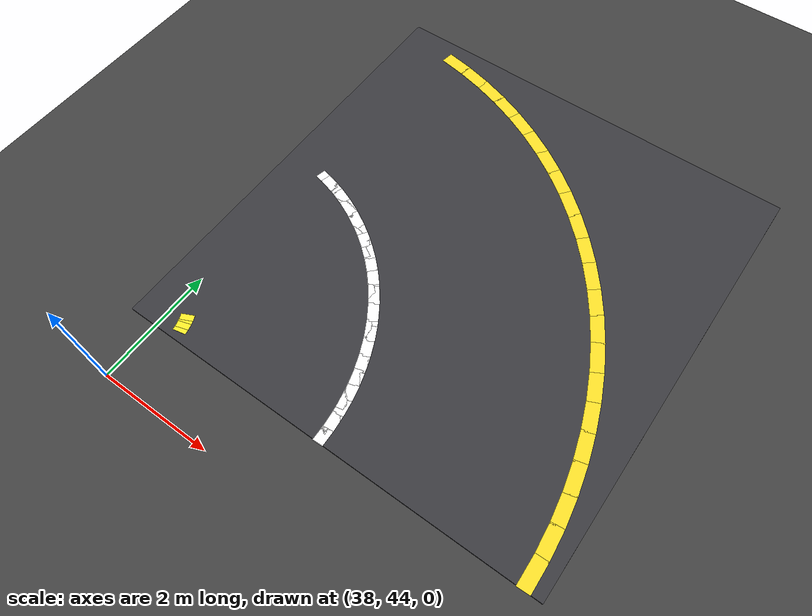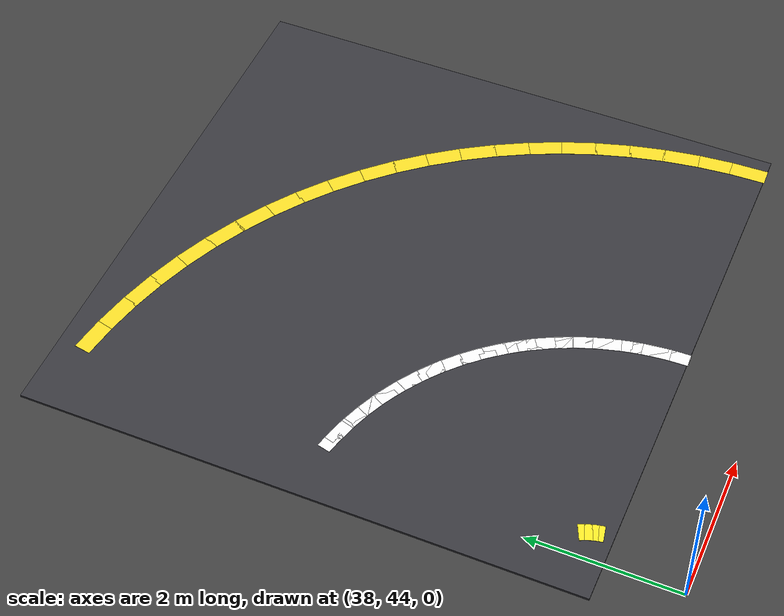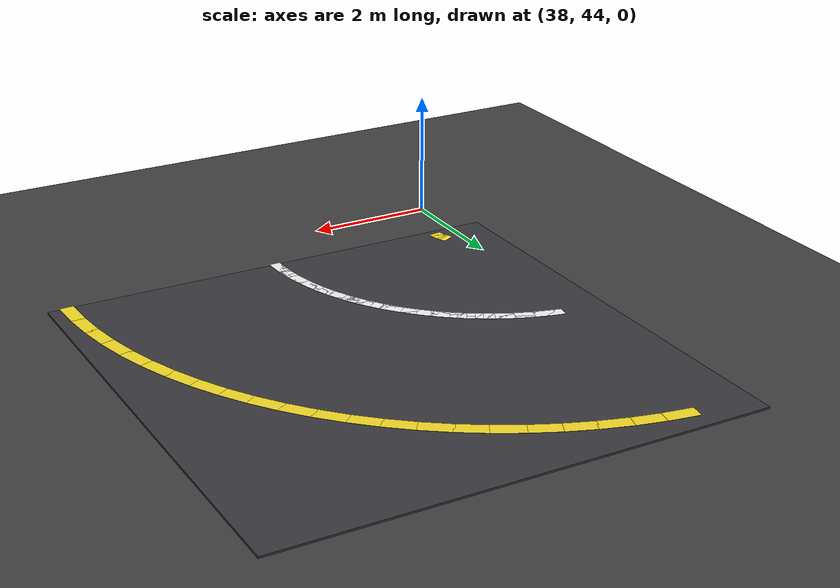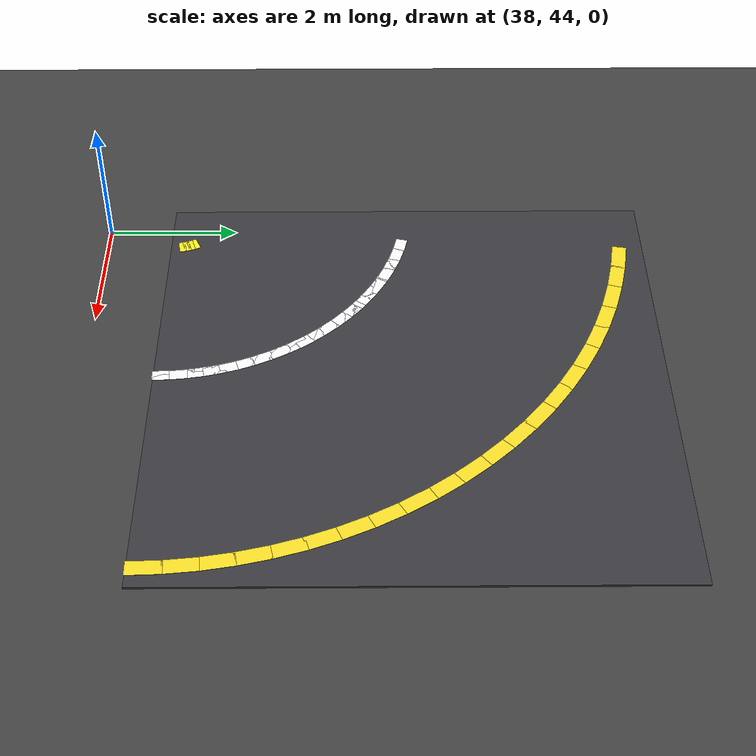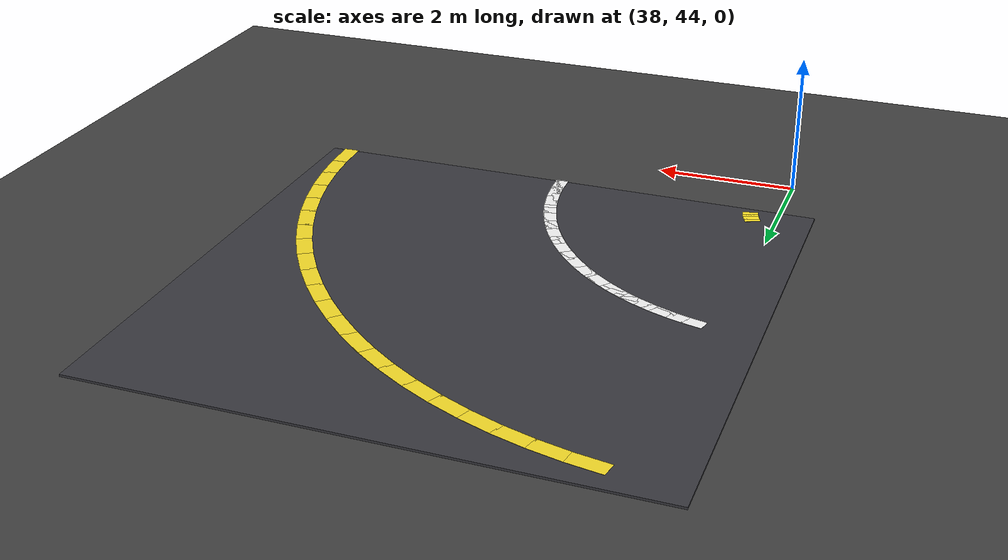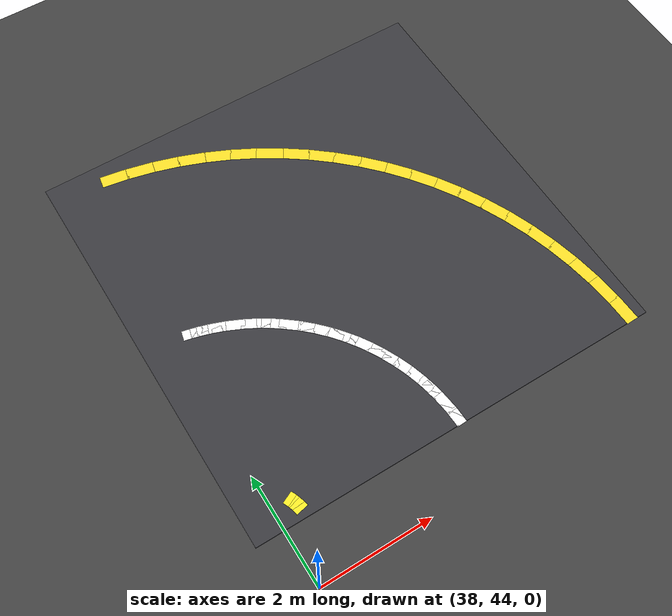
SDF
<sdf version="1.7">
 <world name="compact_city">
  <model name="ground_plane">
   <static>1</static>
   <pose>0 0 0.01 0 -0 0</pose>
   <link name="link">
    <collision name="collision">
     <geometry><plane><normal>0 0 1</normal><size>200 200</size></plane></geometry>
    </collision>
    <visual name="visual">
     <geometry><plane><normal>0 0 1</normal><size>200 200</size></plane></geometry>
     <material>
      <ambient>0.2 0.2 0.2 1</ambient>
      <diffuse>0.25 0.25 0.25 1</diffuse>
      <specular>0.1 0.1 0.1 1</specular>
     </material>
    </visual>
   </link>
  </model>
  <model name="road_tile_12">
   <static>1</static>
   <pose>41.25 48.75 0.015 0 -0 0</pose>
   <link name="link">
    <collision name="collision"><geometry><box><size>7.5 7.5 0.03</size></box></geometry></collision>
    <visual name="visual">
     <geometry><box><size>7.5 7.5 0.03</size></box></geometry>
     <material>
      <ambient>0.18 0.18 0.2 1</ambient>
      <diffuse>0.22 0.22 0.24 1</diffuse>
      <specular>0.1 0.1 0.1 1</specular>
     </material>
    </visual>
   </link>
  </model>
  <model name="ac_426">
   <static>1</static>
   <pose>41.248 45.1227 0.038 0 -0 1.6035</pose>
   <link name="link">
    <visual name="v">
     <geometry><box><size>0.260117 0.18 0.002</size></box></geometry>
     <material><ambient>1 1 1 1</ambient><diffuse>0.95 0.95 0.95 1</diffuse></material>
    </visual>
   </link>
  </model>
  <model name="ac_427">
   <static>1</static>
   <pose>41.232 45.3675 0.038 0 -0 1.669</pose>
   <link name="link">
    <visual name="v">
     <geometry><box><size>0.260117 0.18 0.002</size></box></geometry>
     <material><ambient>1 1 1 1</ambient><diffuse>0.95 0.95 0.95 1</diffuse></material>
    </visual>
   </link>
  </model>
  <model name="ac_428">
   <static>1</static>
   <pose>41.1999 45.6108 0.038 0 -0 1.7344</pose>
   <link name="link">
    <visual name="v">
     <geometry><box><size>0.260117 0.18 0.002</size></box></geometry>
     <material><ambient>1 1 1 1</ambient><diffuse>0.95 0.95 0.95 1</diffuse></material>
    </visual>
   </link>
  </model>
  <model name="ac_429">
   <static>1</static>
   <pose>41.1521 45.8516 0.038 0 -0 1.7999</pose>
   <link name="link">
    <visual name="v">
     <geometry><box><size>0.260117 0.18 0.002</size></box></geometry>
     <material><ambient>1 1 1 1</ambient><diffuse>0.95 0.95 0.95 1</diffuse></material>
    </visual>
   </link>
  </model>
  <model name="ac_430">
   <static>1</static>
   <pose>41.0886 46.0885 0.038 0 -0 1.8653</pose>
   <link name="link">
    <visual name="v">
     <geometry><box><size>0.260117 0.18 0.002</size></box></geometry>
     <material><ambient>1 1 1 1</ambient><diffuse>0.95 0.95 0.95 1</diffuse></material>
    </visual>
   </link>
  </model>
  <model name="ac_431">
   <static>1</static>
   <pose>41.0097 46.3209 0.038 0 -0 1.9308</pose>
   <link name="link">
    <visual name="v">
     <geometry><box><size>0.260117 0.18 0.002</size></box></geometry>
     <material><ambient>1 1 1 1</ambient><diffuse>0.95 0.95 0.95 1</diffuse></material>
    </visual>
   </link>
  </model>
  <model name="ac_432">
   <static>1</static>
   <pose>40.9158 46.5477 0.038 0 -0 1.9962</pose>
   <link name="link">
    <visual name="v">
     <geometry><box><size>0.260117 0.18 0.002</size></box></geometry>
     <material><ambient>1 1 1 1</ambient><diffuse>0.95 0.95 0.95 1</diffuse></material>
    </visual>
   </link>
  </model>
  <model name="ac_433">
   <static>1</static>
   <pose>40.8072 46.7677 0.038 0 -0 2.0617</pose>
   <link name="link">
    <visual name="v">
     <geometry><box><size>0.260117 0.18 0.002</size></box></geometry>
     <material><ambient>1 1 1 1</ambient><diffuse>0.95 0.95 0.95 1</diffuse></material>
    </visual>
   </link>
  </model>
  <model name="ac_434">
   <static>1</static>
   <pose>40.6845 46.9803 0.038 0 -0 2.1271</pose>
   <link name="link">
    <visual name="v">
     <geometry><box><size>0.260117 0.18 0.002</size></box></geometry>
     <material><ambient>1 1 1 1</ambient><diffuse>0.95 0.95 0.95 1</diffuse></material>
    </visual>
   </link>
  </model>
  <model name="ac_435">
   <static>1</static>
   <pose>40.5481 47.1843 0.038 0 -0 2.1926</pose>
   <link name="link">
    <visual name="v">
     <geometry><box><size>0.260117 0.18 0.002</size></box></geometry>
     <material><ambient>1 1 1 1</ambient><diffuse>0.95 0.95 0.95 1</diffuse></material>
    </visual>
   </link>
  </model>
  <model name="ac_436">
   <static>1</static>
   <pose>40.3987 47.379 0.038 0 -0 2.258</pose>
   <link name="link">
    <visual name="v">
     <geometry><box><size>0.260117 0.18 0.002</size></box></geometry>
     <material><ambient>1 1 1 1</ambient><diffuse>0.95 0.95 0.95 1</diffuse></material>
    </visual>
   </link>
  </model>
  <model name="ac_437">
   <static>1</static>
   <pose>40.2371 47.5635 0.038 0 -0 2.3235</pose>
   <link name="link">
    <visual name="v">
     <geometry><box><size>0.260117 0.18 0.002</size></box></geometry>
     <material><ambient>1 1 1 1</ambient><diffuse>0.95 0.95 0.95 1</diffuse></material>
    </visual>
   </link>
  </model>
  <model name="ac_438">
   <static>1</static>
   <pose>40.0635 47.7371 0.038 0 -0 2.3889</pose>
   <link name="link">
    <visual name="v">
     <geometry><box><size>0.260117 0.18 0.002</size></box></geometry>
     <material><ambient>1 1 1 1</ambient><diffuse>0.95 0.95 0.95 1</diffuse></material>
    </visual>
   </link>
  </model>
  <model name="ac_439">
   <static>1</static>
   <pose>39.879 47.8987 0.038 0 -0 2.4544</pose>
   <link name="link">
    <visual name="v">
     <geometry><box><size>0.260117 0.18 0.002</size></box></geometry>
     <material><ambient>1 1 1 1</ambient><diffuse>0.95 0.95 0.95 1</diffuse></material>
    </visual>
   </link>
  </model>
  <model name="ac_440">
   <static>1</static>
   <pose>39.6843 48.0481 0.038 0 -0 2.5198</pose>
   <link name="link">
    <visual name="v">
     <geometry><box><size>0.260117 0.18 0.002</size></box></geometry>
     <material><ambient>1 1 1 1</ambient><diffuse>0.95 0.95 0.95 1</diffuse></material>
    </visual>
   </link>
  </model>
  <model name="ac_441">
   <static>1</static>
   <pose>39.4803 48.1845 0.038 0 -0 2.5853</pose>
   <link name="link">
    <visual name="v">
     <geometry><box><size>0.260117 0.18 0.002</size></box></geometry>
     <material><ambient>1 1 1 1</ambient><diffuse>0.95 0.95 0.95 1</diffuse></material>
    </visual>
   </link>
  </model>
  <model name="ac_442">
   <static>1</static>
   <pose>39.2677 48.3072 0.038 0 -0 2.6507</pose>
   <link name="link">
    <visual name="v">
     <geometry><box><size>0.260117 0.18 0.002</size></box></geometry>
     <material><ambient>1 1 1 1</ambient><diffuse>0.95 0.95 0.95 1</diffuse></material>
    </visual>
   </link>
  </model>
  <model name="ac_443">
   <static>1</static>
   <pose>39.0477 48.4158 0.038 0 -0 2.7162</pose>
   <link name="link">
    <visual name="v">
     <geometry><box><size>0.260117 0.18 0.002</size></box></geometry>
     <material><ambient>1 1 1 1</ambient><diffuse>0.95 0.95 0.95 1</diffuse></material>
    </visual>
   </link>
  </model>
  <model name="ac_444">
   <static>1</static>
   <pose>38.8209 48.5097 0.038 0 -0 2.7816</pose>
   <link name="link">
    <visual name="v">
     <geometry><box><size>0.260117 0.18 0.002</size></box></geometry>
     <material><ambient>1 1 1 1</ambient><diffuse>0.95 0.95 0.95 1</diffuse></material>
    </visual>
   </link>
  </model>
  <model name="ac_445">
   <static>1</static>
   <pose>38.5885 48.5886 0.038 0 -0 2.8471</pose>
   <link name="link">
    <visual name="v">
     <geometry><box><size>0.260117 0.18 0.002</size></box></geometry>
     <material><ambient>1 1 1 1</ambient><diffuse>0.95 0.95 0.95 1</diffuse></material>
    </visual>
   </link>
  </model>
  <model name="ac_446">
   <static>1</static>
   <pose>38.3516 48.6521 0.038 0 -0 2.9125</pose>
   <link name="link">
    <visual name="v">
     <geometry><box><size>0.260117 0.18 0.002</size></box></geometry>
     <material><ambient>1 1 1 1</ambient><diffuse>0.95 0.95 0.95 1</diffuse></material>
    </visual>
   </link>
  </model>
  <model name="ao_474">
   <static>1</static>
   <pose>44.6961 45.2356 0.038 0 -0 1.6035</pose>
   <link name="link">
    <visual name="v">
     <geometry><box><size>0.494712 0.225 0.002</size></box></geometry>
     <material><ambient>0.9 0.8 0.1 1</ambient><diffuse>0.95 0.85 0.15 1</diffuse></material>
    </visual>
   </link>
  </model>
  <model name="ao_475">
   <static>1</static>
   <pose>44.6653 45.7058 0.038 0 -0 1.669</pose>
   <link name="link">
    <visual name="v">
     <geometry><box><size>0.494712 0.225 0.002</size></box></geometry>
     <material><ambient>0.9 0.8 0.1 1</ambient><diffuse>0.95 0.85 0.15 1</diffuse></material>
    </visual>
   </link>
  </model>
  <model name="ao_476">
   <static>1</static>
   <pose>44.6039 46.1728 0.038 0 -0 1.7344</pose>
   <link name="link">
    <visual name="v">
     <geometry><box><size>0.494712 0.225 0.002</size></box></geometry>
     <material><ambient>0.9 0.8 0.1 1</ambient><diffuse>0.95 0.85 0.15 1</diffuse></material>
    </visual>
   </link>
  </model>
  <model name="ao_477">
   <static>1</static>
   <pose>44.5119 46.635 0.038 0 -0 1.7999</pose>
   <link name="link">
    <visual name="v">
     <geometry><box><size>0.494712 0.225 0.002</size></box></geometry>
     <material><ambient>0.9 0.8 0.1 1</ambient><diffuse>0.95 0.85 0.15 1</diffuse></material>
    </visual>
   </link>
  </model>
  <model name="ao_478">
   <static>1</static>
   <pose>44.3899 47.0901 0.038 0 -0 1.8653</pose>
   <link name="link">
    <visual name="v">
     <geometry><box><size>0.494712 0.225 0.002</size></box></geometry>
     <material><ambient>0.9 0.8 0.1 1</ambient><diffuse>0.95 0.85 0.15 1</diffuse></material>
    </visual>
   </link>
  </model>
  <model name="ao_479">
   <static>1</static>
   <pose>44.2385 47.5362 0.038 0 -0 1.9308</pose>
   <link name="link">
    <visual name="v">
     <geometry><box><size>0.494712 0.225 0.002</size></box></geometry>
     <material><ambient>0.9 0.8 0.1 1</ambient><diffuse>0.95 0.85 0.15 1</diffuse></material>
    </visual>
   </link>
  </model>
  <model name="ao_480">
   <static>1</static>
   <pose>44.0581 47.9715 0.038 0 -0 1.9962</pose>
   <link name="link">
    <visual name="v">
     <geometry><box><size>0.494712 0.225 0.002</size></box></geometry>
     <material><ambient>0.9 0.8 0.1 1</ambient><diffuse>0.95 0.85 0.15 1</diffuse></material>
    </visual>
   </link>
  </model>
  <model name="ao_481">
   <static>1</static>
   <pose>43.8498 48.3941 0.038 0 -0 2.0617</pose>
   <link name="link">
    <visual name="v">
     <geometry><box><size>0.494712 0.225 0.002</size></box></geometry>
     <material><ambient>0.9 0.8 0.1 1</ambient><diffuse>0.95 0.85 0.15 1</diffuse></material>
    </visual>
   </link>
  </model>
  <model name="ao_482">
   <static>1</static>
   <pose>43.6143 48.8021 0.038 0 -0 2.1271</pose>
   <link name="link">
    <visual name="v">
     <geometry><box><size>0.494712 0.225 0.002</size></box></geometry>
     <material><ambient>0.9 0.8 0.1 1</ambient><diffuse>0.95 0.85 0.15 1</diffuse></material>
    </visual>
   </link>
  </model>
  <model name="ao_483">
   <static>1</static>
   <pose>43.3526 49.1938 0.038 0 -0 2.1926</pose>
   <link name="link">
    <visual name="v">
     <geometry><box><size>0.494712 0.225 0.002</size></box></geometry>
     <material><ambient>0.9 0.8 0.1 1</ambient><diffuse>0.95 0.85 0.15 1</diffuse></material>
    </visual>
   </link>
  </model>
  <model name="ao_484">
   <static>1</static>
   <pose>43.0658 49.5677 0.038 0 -0 2.258</pose>
   <link name="link">
    <visual name="v">
     <geometry><box><size>0.494712 0.225 0.002</size></box></geometry>
     <material><ambient>0.9 0.8 0.1 1</ambient><diffuse>0.95 0.85 0.15 1</diffuse></material>
    </visual>
   </link>
  </model>
  <model name="ao_485">
   <static>1</static>
   <pose>42.755 49.9218 0.038 0 -0 2.3235</pose>
   <link name="link">
    <visual name="v">
     <geometry><box><size>0.494712 0.225 0.002</size></box></geometry>
     <material><ambient>0.9 0.8 0.1 1</ambient><diffuse>0.95 0.85 0.15 1</diffuse></material>
    </visual>
   </link>
  </model>
  <model name="ao_486">
   <static>1</static>
   <pose>42.4218 50.255 0.038 0 -0 2.3889</pose>
   <link name="link">
    <visual name="v">
     <geometry><box><size>0.494712 0.225 0.002</size></box></geometry>
     <material><ambient>0.9 0.8 0.1 1</ambient><diffuse>0.95 0.85 0.15 1</diffuse></material>
    </visual>
   </link>
  </model>
  <model name="ao_487">
   <static>1</static>
   <pose>42.0677 50.5658 0.038 0 -0 2.4544</pose>
   <link name="link">
    <visual name="v">
     <geometry><box><size>0.494712 0.225 0.002</size></box></geometry>
     <material><ambient>0.9 0.8 0.1 1</ambient><diffuse>0.95 0.85 0.15 1</diffuse></material>
    </visual>
   </link>
  </model>
  <model name="ao_488">
   <static>1</static>
   <pose>41.6938 50.8526 0.038 0 -0 2.5198</pose>
   <link name="link">
    <visual name="v">
     <geometry><box><size>0.494712 0.225 0.002</size></box></geometry>
     <material><ambient>0.9 0.8 0.1 1</ambient><diffuse>0.95 0.85 0.15 1</diffuse></material>
    </visual>
   </link>
  </model>
  <model name="ao_489">
   <static>1</static>
   <pose>41.3021 51.1143 0.038 0 -0 2.5853</pose>
   <link name="link">
    <visual name="v">
     <geometry><box><size>0.494712 0.225 0.002</size></box></geometry>
     <material><ambient>0.9 0.8 0.1 1</ambient><diffuse>0.95 0.85 0.15 1</diffuse></material>
    </visual>
   </link>
  </model>
  <model name="ao_490">
   <static>1</static>
   <pose>40.8941 51.3498 0.038 0 -0 2.6507</pose>
   <link name="link">
    <visual name="v">
     <geometry><box><size>0.494712 0.225 0.002</size></box></geometry>
     <material><ambient>0.9 0.8 0.1 1</ambient><diffuse>0.95 0.85 0.15 1</diffuse></material>
    </visual>
   </link>
  </model>
  <model name="ao_491">
   <static>1</static>
   <pose>40.4715 51.5581 0.038 0 -0 2.7162</pose>
   <link name="link">
    <visual name="v">
     <geometry><box><size>0.494712 0.225 0.002</size></box></geometry>
     <material><ambient>0.9 0.8 0.1 1</ambient><diffuse>0.95 0.85 0.15 1</diffuse></material>
    </visual>
   </link>
  </model>
  <model name="ao_492">
   <static>1</static>
   <pose>40.0362 51.7385 0.038 0 -0 2.7816</pose>
   <link name="link">
    <visual name="v">
     <geometry><box><size>0.494712 0.225 0.002</size></box></geometry>
     <material><ambient>0.9 0.8 0.1 1</ambient><diffuse>0.95 0.85 0.15 1</diffuse></material>
    </visual>
   </link>
  </model>
  <model name="ao_493">
   <static>1</static>
   <pose>39.5901 51.8899 0.038 0 -0 2.8471</pose>
   <link name="link">
    <visual name="v">
     <geometry><box><size>0.494712 0.225 0.002</size></box></geometry>
     <material><ambient>0.9 0.8 0.1 1</ambient><diffuse>0.95 0.85 0.15 1</diffuse></material>
    </visual>
   </link>
  </model>
  <model name="ao_494">
   <static>1</static>
   <pose>39.135 52.0119 0.038 0 -0 2.9125</pose>
   <link name="link">
    <visual name="v">
     <geometry><box><size>0.494712 0.225 0.002</size></box></geometry>
     <material><ambient>0.9 0.8 0.1 1</ambient><diffuse>0.95 0.85 0.15 1</diffuse></material>
    </visual>
   </link>
  </model>
  <model name="ao_495">
   <static>1</static>
   <pose>38.6728 52.1039 0.038 0 -0 2.978</pose>
   <link name="link">
    <visual name="v">
     <geometry><box><size>0.494712 0.225 0.002</size></box></geometry>
     <material><ambient>0.9 0.8 0.1 1</ambient><diffuse>0.95 0.85 0.15 1</diffuse></material>
    </visual>
   </link>
  </model>
  <model name="arc_c_261">
   <static>1</static>
   <pose>41.2441 45.1472 0.038 0 -0 1.6101</pose>
   <link name="link">
    <visual name="visual">
     <geometry><box><size>0.324449 0.18 0.002</size></box></geometry>
     <material><ambient>1 1 1 1</ambient><diffuse>0.95 0.95 0.95 1</diffuse></material>
    </visual>
   </link>
  </model>
  <model name="arc_c_262">
   <static>1</static>
   <pose>41.2212 45.4404 0.038 0 -0 1.6886</pose>
   <link name="link">
    <visual name="visual">
     <geometry><box><size>0.324449 0.18 0.002</size></box></geometry>
     <material><ambient>1 1 1 1</ambient><diffuse>0.95 0.95 0.95 1</diffuse></material>
    </visual>
   </link>
  </model>
  <model name="arc_c_263">
   <static>1</static>
   <pose>41.1752 45.7309 0.038 0 -0 1.7671</pose>
   <link name="link">
    <visual name="visual">
     <geometry><box><size>0.324449 0.18 0.002</size></box></geometry>
     <material><ambient>1 1 1 1</ambient><diffuse>0.95 0.95 0.95 1</diffuse></material>
    </visual>
   </link>
  </model>
  <model name="arc_c_264">
   <static>1</static>
   <pose>41.1065 46.0172 0.038 0 -0 1.8457</pose>
   <link name="link">
    <visual name="visual">
     <geometry><box><size>0.324449 0.18 0.002</size></box></geometry>
     <material><ambient>1 1 1 1</ambient><diffuse>0.95 0.95 0.95 1</diffuse></material>
    </visual>
   </link>
  </model>
  <model name="arc_c_265">
   <static>1</static>
   <pose>41.0155 46.2969 0.038 0 -0 1.9242</pose>
   <link name="link">
    <visual name="visual">
     <geometry><box><size>0.324449 0.18 0.002</size></box></geometry>
     <material><ambient>1 1 1 1</ambient><diffuse>0.95 0.95 0.95 1</diffuse></material>
    </visual>
   </link>
  </model>
  <model name="arc_c_266">
   <static>1</static>
   <pose>40.9029 46.5687 0.038 0 -0 2.0028</pose>
   <link name="link">
    <visual name="visual">
     <geometry><box><size>0.324449 0.18 0.002</size></box></geometry>
     <material><ambient>1 1 1 1</ambient><diffuse>0.95 0.95 0.95 1</diffuse></material>
    </visual>
   </link>
  </model>
  <model name="arc_c_267">
   <static>1</static>
   <pose>40.7694 46.8309 0.038 0 -0 2.0813</pose>
   <link name="link">
    <visual name="visual">
     <geometry><box><size>0.324449 0.18 0.002</size></box></geometry>
     <material><ambient>1 1 1 1</ambient><diffuse>0.95 0.95 0.95 1</diffuse></material>
    </visual>
   </link>
  </model>
  <model name="arc_c_268">
   <static>1</static>
   <pose>40.6157 47.0819 0.038 0 -0 2.1598</pose>
   <link name="link">
    <visual name="visual">
     <geometry><box><size>0.324449 0.18 0.002</size></box></geometry>
     <material><ambient>1 1 1 1</ambient><diffuse>0.95 0.95 0.95 1</diffuse></material>
    </visual>
   </link>
  </model>
  <model name="arc_c_269">
   <static>1</static>
   <pose>40.4427 47.3197 0.038 0 -0 2.2384</pose>
   <link name="link">
    <visual name="visual">
     <geometry><box><size>0.324449 0.18 0.002</size></box></geometry>
     <material><ambient>1 1 1 1</ambient><diffuse>0.95 0.95 0.95 1</diffuse></material>
    </visual>
   </link>
  </model>
  <model name="arc_c_270">
   <static>1</static>
   <pose>40.2516 47.5436 0.038 0 -0 2.3169</pose>
   <link name="link">
    <visual name="visual">
     <geometry><box><size>0.324449 0.18 0.002</size></box></geometry>
     <material><ambient>1 1 1 1</ambient><diffuse>0.95 0.95 0.95 1</diffuse></material>
    </visual>
   </link>
  </model>
  <model name="arc_c_271">
   <static>1</static>
   <pose>40.0436 47.7516 0.038 0 -0 2.3955</pose>
   <link name="link">
    <visual name="visual">
     <geometry><box><size>0.324449 0.18 0.002</size></box></geometry>
     <material><ambient>1 1 1 1</ambient><diffuse>0.95 0.95 0.95 1</diffuse></material>
    </visual>
   </link>
  </model>
  <model name="arc_c_272">
   <static>1</static>
   <pose>39.8197 47.9427 0.038 0 -0 2.474</pose>
   <link name="link">
    <visual name="visual">
     <geometry><box><size>0.324449 0.18 0.002</size></box></geometry>
     <material><ambient>1 1 1 1</ambient><diffuse>0.95 0.95 0.95 1</diffuse></material>
    </visual>
   </link>
  </model>
  <model name="arc_c_273">
   <static>1</static>
   <pose>39.5819 48.1157 0.038 0 -0 2.5525</pose>
   <link name="link">
    <visual name="visual">
     <geometry><box><size>0.324449 0.18 0.002</size></box></geometry>
     <material><ambient>1 1 1 1</ambient><diffuse>0.95 0.95 0.95 1</diffuse></material>
    </visual>
   </link>
  </model>
  <model name="arc_c_274">
   <static>1</static>
   <pose>39.3309 48.2694 0.038 0 -0 2.6311</pose>
   <link name="link">
    <visual name="visual">
     <geometry><box><size>0.324449 0.18 0.002</size></box></geometry>
     <material><ambient>1 1 1 1</ambient><diffuse>0.95 0.95 0.95 1</diffuse></material>
    </visual>
   </link>
  </model>
  <model name="arc_c_275">
   <static>1</static>
   <pose>39.0687 48.4029 0.038 0 -0 2.7096</pose>
   <link name="link">
    <visual name="visual">
     <geometry><box><size>0.324449 0.18 0.002</size></box></geometry>
     <material><ambient>1 1 1 1</ambient><diffuse>0.95 0.95 0.95 1</diffuse></material>
    </visual>
   </link>
  </model>
  <model name="arc_c_276">
   <static>1</static>
   <pose>38.7969 48.5155 0.038 0 -0 2.7882</pose>
   <link name="link">
    <visual name="visual">
     <geometry><box><size>0.324449 0.18 0.002</size></box></geometry>
     <material><ambient>1 1 1 1</ambient><diffuse>0.95 0.95 0.95 1</diffuse></material>
    </visual>
   </link>
  </model>
  <model name="arc_c_277">
   <static>1</static>
   <pose>38.5172 48.6065 0.038 0 -0 2.8667</pose>
   <link name="link">
    <visual name="visual">
     <geometry><box><size>0.324449 0.18 0.002</size></box></geometry>
     <material><ambient>1 1 1 1</ambient><diffuse>0.95 0.95 0.95 1</diffuse></material>
    </visual>
   </link>
  </model>
  <model name="arc_in_283">
   <static>1</static>
   <pose>38.382 45.1755 0.038 0 -0 1.7671</pose>
   <link name="link">
    <visual name="visual">
     <geometry><box><size>0.100668 0.225 0.002</size></box></geometry>
     <material><ambient>0.95 0.85 0.1 1</ambient><diffuse>1 0.9 0.15 1</diffuse></material>
    </visual>
   </link>
  </model>
  <model name="arc_in_284">
   <static>1</static>
   <pose>38.3655 45.2441 0.038 0 -0 1.8457</pose>
   <link name="link">
    <visual name="visual">
     <geometry><box><size>0.100668 0.225 0.002</size></box></geometry>
     <material><ambient>0.95 0.85 0.1 1</ambient><diffuse>1 0.9 0.15 1</diffuse></material>
    </visual>
   </link>
  </model>
  <model name="arc_in_285">
   <static>1</static>
   <pose>38.3438 45.3113 0.038 0 -0 1.9242</pose>
   <link name="link">
    <visual name="visual">
     <geometry><box><size>0.100668 0.225 0.002</size></box></geometry>
     <material><ambient>0.95 0.85 0.1 1</ambient><diffuse>1 0.9 0.15 1</diffuse></material>
    </visual>
   </link>
  </model>
  <model name="arc_in_286">
   <static>1</static>
   <pose>38.3167 45.3765 0.038 0 -0 2.0028</pose>
   <link name="link">
    <visual name="visual">
     <geometry><box><size>0.100668 0.225 0.002</size></box></geometry>
     <material><ambient>0.95 0.85 0.1 1</ambient><diffuse>1 0.9 0.15 1</diffuse></material>
    </visual>
   </link>
  </model>
 </world>
</sdf>
